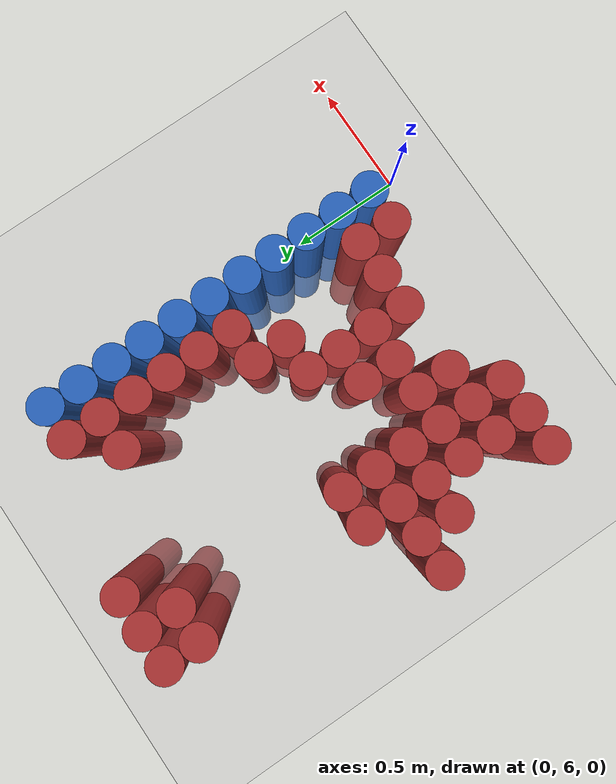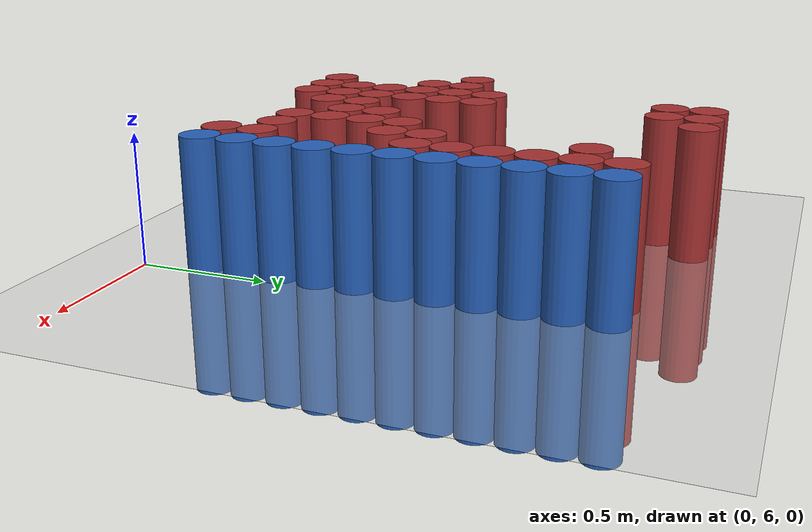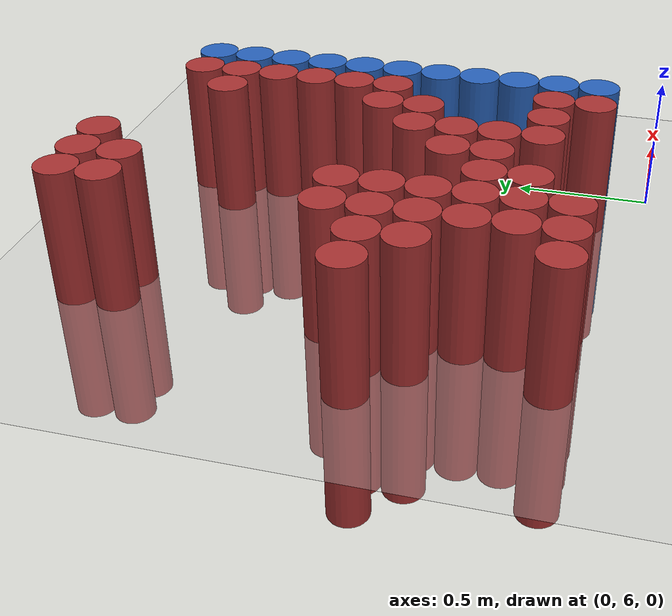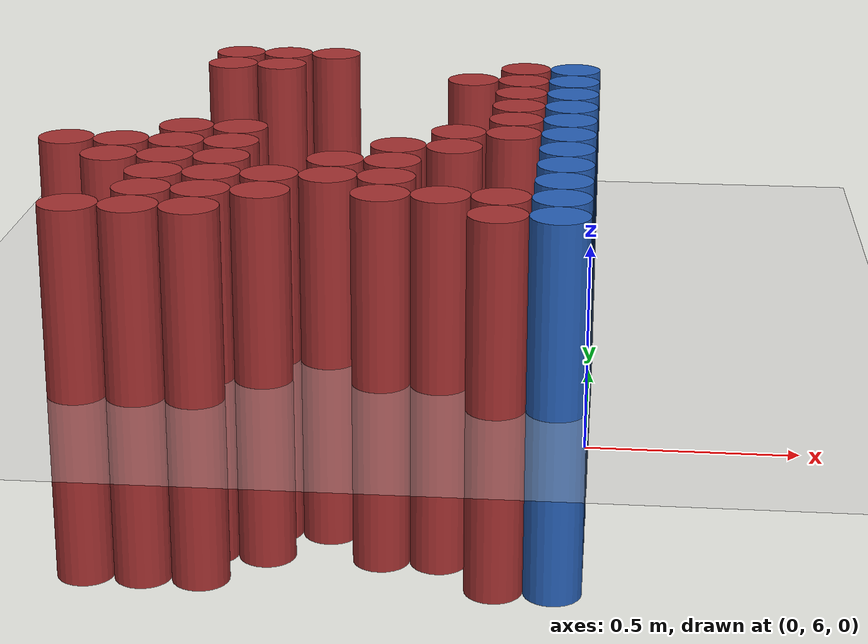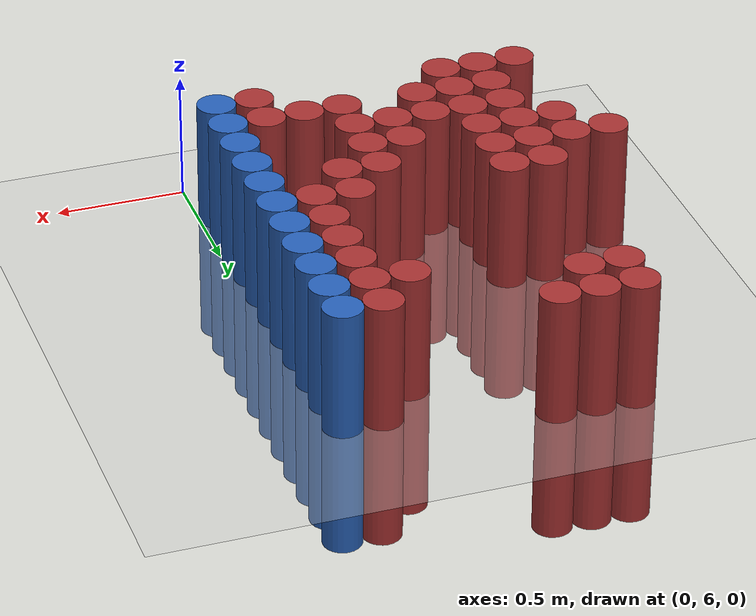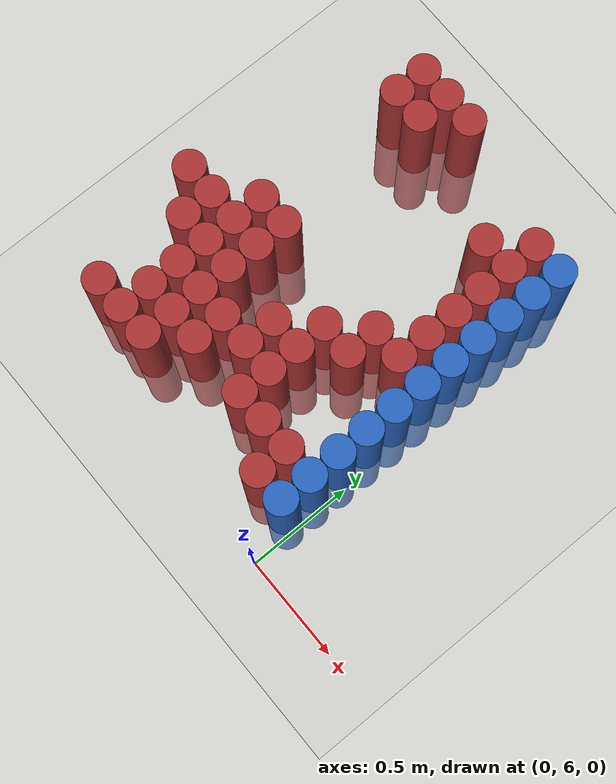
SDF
<sdf version="1.6">
 <world name="default">
  <model name="ground_plane">
   <static>1</static>
   <link name="link">
    <collision name="collision">
     <geometry><plane><normal>0 0 1</normal><size>100 100</size></plane></geometry>
     <surface><friction><ode><mu>100</mu><mu2>50</mu2></ode></friction></surface>
    </collision>
    <visual name="visual">
     <cast_shadows>0</cast_shadows>
     <geometry><plane><normal>0 0 1</normal><size>100 100</size></plane></geometry>
     <material>
      <script><uri>file://media/materials/scripts/gazebo.material</uri><name>Gazebo/Grey</name></script>
     </material>
    </visual>
   </link>
  </model>
  <model name="unit_cylinder_228">
   <static>1</static>
   <pose>-1.425000 6.825000 0.000000 0.000000 0.000000 0.000000</pose>
   <link name="link">
    <inertial>
     <mass>1</mass>
     <inertia><ixx>0.145833</ixx><ixy>0</ixy><ixz>0</ixz><iyy>0.145833</iyy><iyz>0</iyz><izz>0.125</izz></inertia>
    </inertial>
    <collision name="collision">
     <geometry><cylinder><radius>0.075000</radius><length>1</length></cylinder></geometry>
    </collision>
    <visual name="visual">
     <geometry><cylinder><radius>0.075000</radius><length>1</length></cylinder></geometry>
     <material>
      <ambient>0.648000 0.192000 0.192000 1</ambient>
      <diffuse>0.648000 0.192000 0.192000 1</diffuse>
     </material>
     <material>
      <script><name>Gazebo/Grey</name><uri>file://media/materials/scripts/gazebo.material</uri></script>
     </material>
    </visual>
   </link>
  </model>
  <model name="unit_cylinder_241">
   <static>1</static>
   <pose>-1.275000 6.225000 0.000000 0.000000 0.000000 0.000000</pose>
   <link name="link">
    <inertial>
     <mass>1</mass>
     <inertia><ixx>0.145833</ixx><ixy>0</ixy><ixz>0</ixz><iyy>0.145833</iyy><iyz>0</iyz><izz>0.125</izz></inertia>
    </inertial>
    <collision name="collision">
     <geometry><cylinder><radius>0.075000</radius><length>1</length></cylinder></geometry>
    </collision>
    <visual name="visual">
     <geometry><cylinder><radius>0.075000</radius><length>1</length></cylinder></geometry>
     <material>
      <ambient>0.648000 0.192000 0.192000 1</ambient>
      <diffuse>0.648000 0.192000 0.192000 1</diffuse>
     </material>
     <material>
      <script><name>Gazebo/Grey</name><uri>file://media/materials/scripts/gazebo.material</uri></script>
     </material>
    </visual>
   </link>
  </model>
  <model name="unit_cylinder_242">
   <static>1</static>
   <pose>-1.275000 6.675000 0.000000 0.000000 0.000000 0.000000</pose>
   <link name="link">
    <inertial>
     <mass>1</mass>
     <inertia><ixx>0.145833</ixx><ixy>0</ixy><ixz>0</ixz><iyy>0.145833</iyy><iyz>0</iyz><izz>0.125</izz></inertia>
    </inertial>
    <collision name="collision">
     <geometry><cylinder><radius>0.075000</radius><length>1</length></cylinder></geometry>
    </collision>
    <visual name="visual">
     <geometry><cylinder><radius>0.075000</radius><length>1</length></cylinder></geometry>
     <material>
      <ambient>0.648000 0.192000 0.192000 1</ambient>
      <diffuse>0.648000 0.192000 0.192000 1</diffuse>
     </material>
     <material>
      <script><name>Gazebo/Grey</name><uri>file://media/materials/scripts/gazebo.material</uri></script>
     </material>
    </visual>
   </link>
  </model>
  <model name="unit_cylinder_243">
   <static>1</static>
   <pose>-1.275000 6.825000 0.000000 0.000000 0.000000 0.000000</pose>
   <link name="link">
    <inertial>
     <mass>1</mass>
     <inertia><ixx>0.145833</ixx><ixy>0</ixy><ixz>0</ixz><iyy>0.145833</iyy><iyz>0</iyz><izz>0.125</izz></inertia>
    </inertial>
    <collision name="collision">
     <geometry><cylinder><radius>0.075000</radius><length>1</length></cylinder></geometry>
    </collision>
    <visual name="visual">
     <geometry><cylinder><radius>0.075000</radius><length>1</length></cylinder></geometry>
     <material>
      <ambient>0.648000 0.192000 0.192000 1</ambient>
      <diffuse>0.648000 0.192000 0.192000 1</diffuse>
     </material>
     <material>
      <script><name>Gazebo/Grey</name><uri>file://media/materials/scripts/gazebo.material</uri></script>
     </material>
    </visual>
   </link>
  </model>
  <model name="unit_cylinder_254">
   <static>1</static>
   <pose>-1.125000 6.225000 0.000000 0.000000 0.000000 0.000000</pose>
   <link name="link">
    <inertial>
     <mass>1</mass>
     <inertia><ixx>0.145833</ixx><ixy>0</ixy><ixz>0</ixz><iyy>0.145833</iyy><iyz>0</iyz><izz>0.125</izz></inertia>
    </inertial>
    <collision name="collision">
     <geometry><cylinder><radius>0.075000</radius><length>1</length></cylinder></geometry>
    </collision>
    <visual name="visual">
     <geometry><cylinder><radius>0.075000</radius><length>1</length></cylinder></geometry>
     <material>
      <ambient>0.648000 0.192000 0.192000 1</ambient>
      <diffuse>0.648000 0.192000 0.192000 1</diffuse>
     </material>
     <material>
      <script><name>Gazebo/Grey</name><uri>file://media/materials/scripts/gazebo.material</uri></script>
     </material>
    </visual>
   </link>
  </model>
  <model name="unit_cylinder_255">
   <static>1</static>
   <pose>-1.125000 6.375000 0.000000 0.000000 0.000000 0.000000</pose>
   <link name="link">
    <inertial>
     <mass>1</mass>
     <inertia><ixx>0.145833</ixx><ixy>0</ixy><ixz>0</ixz><iyy>0.145833</iyy><iyz>0</iyz><izz>0.125</izz></inertia>
    </inertial>
    <collision name="collision">
     <geometry><cylinder><radius>0.075000</radius><length>1</length></cylinder></geometry>
    </collision>
    <visual name="visual">
     <geometry><cylinder><radius>0.075000</radius><length>1</length></cylinder></geometry>
     <material>
      <ambient>0.648000 0.192000 0.192000 1</ambient>
      <diffuse>0.648000 0.192000 0.192000 1</diffuse>
     </material>
     <material>
      <script><name>Gazebo/Grey</name><uri>file://media/materials/scripts/gazebo.material</uri></script>
     </material>
    </visual>
   </link>
  </model>
  <model name="unit_cylinder_256">
   <static>1</static>
   <pose>-1.125000 6.525000 0.000000 0.000000 0.000000 0.000000</pose>
   <link name="link">
    <inertial>
     <mass>1</mass>
     <inertia><ixx>0.145833</ixx><ixy>0</ixy><ixz>0</ixz><iyy>0.145833</iyy><iyz>0</iyz><izz>0.125</izz></inertia>
    </inertial>
    <collision name="collision">
     <geometry><cylinder><radius>0.075000</radius><length>1</length></cylinder></geometry>
    </collision>
    <visual name="visual">
     <geometry><cylinder><radius>0.075000</radius><length>1</length></cylinder></geometry>
     <material>
      <ambient>0.648000 0.192000 0.192000 1</ambient>
      <diffuse>0.648000 0.192000 0.192000 1</diffuse>
     </material>
     <material>
      <script><name>Gazebo/Grey</name><uri>file://media/materials/scripts/gazebo.material</uri></script>
     </material>
    </visual>
   </link>
  </model>
  <model name="unit_cylinder_257">
   <static>1</static>
   <pose>-1.125000 6.675000 0.000000 0.000000 0.000000 0.000000</pose>
   <link name="link">
    <inertial>
     <mass>1</mass>
     <inertia><ixx>0.145833</ixx><ixy>0</ixy><ixz>0</ixz><iyy>0.145833</iyy><iyz>0</iyz><izz>0.125</izz></inertia>
    </inertial>
    <collision name="collision">
     <geometry><cylinder><radius>0.075000</radius><length>1</length></cylinder></geometry>
    </collision>
    <visual name="visual">
     <geometry><cylinder><radius>0.075000</radius><length>1</length></cylinder></geometry>
     <material>
      <ambient>0.648000 0.192000 0.192000 1</ambient>
      <diffuse>0.648000 0.192000 0.192000 1</diffuse>
     </material>
     <material>
      <script><name>Gazebo/Grey</name><uri>file://media/materials/scripts/gazebo.material</uri></script>
     </material>
    </visual>
   </link>
  </model>
  <model name="unit_cylinder_258">
   <static>1</static>
   <pose>-1.125000 6.825000 0.000000 0.000000 0.000000 0.000000</pose>
   <link name="link">
    <inertial>
     <mass>1</mass>
     <inertia><ixx>0.145833</ixx><ixy>0</ixy><ixz>0</ixz><iyy>0.145833</iyy><iyz>0</iyz><izz>0.125</izz></inertia>
    </inertial>
    <collision name="collision">
     <geometry><cylinder><radius>0.075000</radius><length>1</length></cylinder></geometry>
    </collision>
    <visual name="visual">
     <geometry><cylinder><radius>0.075000</radius><length>1</length></cylinder></geometry>
     <material>
      <ambient>0.648000 0.192000 0.192000 1</ambient>
      <diffuse>0.648000 0.192000 0.192000 1</diffuse>
     </material>
     <material>
      <script><name>Gazebo/Grey</name><uri>file://media/materials/scripts/gazebo.material</uri></script>
     </material>
    </visual>
   </link>
  </model>
  <model name="unit_cylinder_259">
   <static>1</static>
   <pose>-1.125000 6.975000 0.000000 0.000000 0.000000 0.000000</pose>
   <link name="link">
    <inertial>
     <mass>1</mass>
     <inertia><ixx>0.145833</ixx><ixy>0</ixy><ixz>0</ixz><iyy>0.145833</iyy><iyz>0</iyz><izz>0.125</izz></inertia>
    </inertial>
    <collision name="collision">
     <geometry><cylinder><radius>0.075000</radius><length>1</length></cylinder></geometry>
    </collision>
    <visual name="visual">
     <geometry><cylinder><radius>0.075000</radius><length>1</length></cylinder></geometry>
     <material>
      <ambient>0.648000 0.192000 0.192000 1</ambient>
      <diffuse>0.648000 0.192000 0.192000 1</diffuse>
     </material>
     <material>
      <script><name>Gazebo/Grey</name><uri>file://media/materials/scripts/gazebo.material</uri></script>
     </material>
    </visual>
   </link>
  </model>
  <model name="unit_cylinder_260">
   <static>1</static>
   <pose>-1.125000 7.725000 0.000000 0.000000 0.000000 0.000000</pose>
   <link name="link">
    <inertial>
     <mass>1</mass>
     <inertia><ixx>0.145833</ixx><ixy>0</ixy><ixz>0</ixz><iyy>0.145833</iyy><iyz>0</iyz><izz>0.125</izz></inertia>
    </inertial>
    <collision name="collision">
     <geometry><cylinder><radius>0.075000</radius><length>1</length></cylinder></geometry>
    </collision>
    <visual name="visual">
     <geometry><cylinder><radius>0.075000</radius><length>1</length></cylinder></geometry>
     <material>
      <ambient>0.648000 0.192000 0.192000 1</ambient>
      <diffuse>0.648000 0.192000 0.192000 1</diffuse>
     </material>
     <material>
      <script><name>Gazebo/Grey</name><uri>file://media/materials/scripts/gazebo.material</uri></script>
     </material>
    </visual>
   </link>
  </model>
  <model name="unit_cylinder_261">
   <static>1</static>
   <pose>-1.125000 7.875000 0.000000 0.000000 0.000000 0.000000</pose>
   <link name="link">
    <inertial>
     <mass>1</mass>
     <inertia><ixx>0.145833</ixx><ixy>0</ixy><ixz>0</ixz><iyy>0.145833</iyy><iyz>0</iyz><izz>0.125</izz></inertia>
    </inertial>
    <collision name="collision">
     <geometry><cylinder><radius>0.075000</radius><length>1</length></cylinder></geometry>
    </collision>
    <visual name="visual">
     <geometry><cylinder><radius>0.075000</radius><length>1</length></cylinder></geometry>
     <material>
      <ambient>0.648000 0.192000 0.192000 1</ambient>
      <diffuse>0.648000 0.192000 0.192000 1</diffuse>
     </material>
     <material>
      <script><name>Gazebo/Grey</name><uri>file://media/materials/scripts/gazebo.material</uri></script>
     </material>
    </visual>
   </link>
  </model>
  <model name="unit_cylinder_269">
   <static>1</static>
   <pose>-0.975000 6.225000 0.000000 0.000000 0.000000 0.000000</pose>
   <link name="link">
    <inertial>
     <mass>1</mass>
     <inertia><ixx>0.145833</ixx><ixy>0</ixy><ixz>0</ixz><iyy>0.145833</iyy><iyz>0</iyz><izz>0.125</izz></inertia>
    </inertial>
    <collision name="collision">
     <geometry><cylinder><radius>0.075000</radius><length>1</length></cylinder></geometry>
    </collision>
    <visual name="visual">
     <geometry><cylinder><radius>0.075000</radius><length>1</length></cylinder></geometry>
     <material>
      <ambient>0.648000 0.192000 0.192000 1</ambient>
      <diffuse>0.648000 0.192000 0.192000 1</diffuse>
     </material>
     <material>
      <script><name>Gazebo/Grey</name><uri>file://media/materials/scripts/gazebo.material</uri></script>
     </material>
    </visual>
   </link>
  </model>
  <model name="unit_cylinder_270">
   <static>1</static>
   <pose>-0.975000 6.375000 0.000000 0.000000 0.000000 0.000000</pose>
   <link name="link">
    <inertial>
     <mass>1</mass>
     <inertia><ixx>0.145833</ixx><ixy>0</ixy><ixz>0</ixz><iyy>0.145833</iyy><iyz>0</iyz><izz>0.125</izz></inertia>
    </inertial>
    <collision name="collision">
     <geometry><cylinder><radius>0.075000</radius><length>1</length></cylinder></geometry>
    </collision>
    <visual name="visual">
     <geometry><cylinder><radius>0.075000</radius><length>1</length></cylinder></geometry>
     <material>
      <ambient>0.648000 0.192000 0.192000 1</ambient>
      <diffuse>0.648000 0.192000 0.192000 1</diffuse>
     </material>
     <material>
      <script><name>Gazebo/Grey</name><uri>file://media/materials/scripts/gazebo.material</uri></script>
     </material>
    </visual>
   </link>
  </model>
  <model name="unit_cylinder_271">
   <static>1</static>
   <pose>-0.975000 6.525000 0.000000 0.000000 0.000000 0.000000</pose>
   <link name="link">
    <inertial>
     <mass>1</mass>
     <inertia><ixx>0.145833</ixx><ixy>0</ixy><ixz>0</ixz><iyy>0.145833</iyy><iyz>0</iyz><izz>0.125</izz></inertia>
    </inertial>
    <collision name="collision">
     <geometry><cylinder><radius>0.075000</radius><length>1</length></cylinder></geometry>
    </collision>
    <visual name="visual">
     <geometry><cylinder><radius>0.075000</radius><length>1</length></cylinder></geometry>
     <material>
      <ambient>0.648000 0.192000 0.192000 1</ambient>
      <diffuse>0.648000 0.192000 0.192000 1</diffuse>
     </material>
     <material>
      <script><name>Gazebo/Grey</name><uri>file://media/materials/scripts/gazebo.material</uri></script>
     </material>
    </visual>
   </link>
  </model>
  <model name="unit_cylinder_272">
   <static>1</static>
   <pose>-0.975000 6.675000 0.000000 0.000000 0.000000 0.000000</pose>
   <link name="link">
    <inertial>
     <mass>1</mass>
     <inertia><ixx>0.145833</ixx><ixy>0</ixy><ixz>0</ixz><iyy>0.145833</iyy><iyz>0</iyz><izz>0.125</izz></inertia>
    </inertial>
    <collision name="collision">
     <geometry><cylinder><radius>0.075000</radius><length>1</length></cylinder></geometry>
    </collision>
    <visual name="visual">
     <geometry><cylinder><radius>0.075000</radius><length>1</length></cylinder></geometry>
     <material>
      <ambient>0.648000 0.192000 0.192000 1</ambient>
      <diffuse>0.648000 0.192000 0.192000 1</diffuse>
     </material>
     <material>
      <script><name>Gazebo/Grey</name><uri>file://media/materials/scripts/gazebo.material</uri></script>
     </material>
    </visual>
   </link>
  </model>
  <model name="unit_cylinder_273">
   <static>1</static>
   <pose>-0.975000 6.825000 0.000000 0.000000 0.000000 0.000000</pose>
   <link name="link">
    <inertial>
     <mass>1</mass>
     <inertia><ixx>0.145833</ixx><ixy>0</ixy><ixz>0</ixz><iyy>0.145833</iyy><iyz>0</iyz><izz>0.125</izz></inertia>
    </inertial>
    <collision name="collision">
     <geometry><cylinder><radius>0.075000</radius><length>1</length></cylinder></geometry>
    </collision>
    <visual name="visual">
     <geometry><cylinder><radius>0.075000</radius><length>1</length></cylinder></geometry>
     <material>
      <ambient>0.648000 0.192000 0.192000 1</ambient>
      <diffuse>0.648000 0.192000 0.192000 1</diffuse>
     </material>
     <material>
      <script><name>Gazebo/Grey</name><uri>file://media/materials/scripts/gazebo.material</uri></script>
     </material>
    </visual>
   </link>
  </model>
  <model name="unit_cylinder_274">
   <static>1</static>
   <pose>-0.975000 6.975000 0.000000 0.000000 0.000000 0.000000</pose>
   <link name="link">
    <inertial>
     <mass>1</mass>
     <inertia><ixx>0.145833</ixx><ixy>0</ixy><ixz>0</ixz><iyy>0.145833</iyy><iyz>0</iyz><izz>0.125</izz></inertia>
    </inertial>
    <collision name="collision">
     <geometry><cylinder><radius>0.075000</radius><length>1</length></cylinder></geometry>
    </collision>
    <visual name="visual">
     <geometry><cylinder><radius>0.075000</radius><length>1</length></cylinder></geometry>
     <material>
      <ambient>0.648000 0.192000 0.192000 1</ambient>
      <diffuse>0.648000 0.192000 0.192000 1</diffuse>
     </material>
     <material>
      <script><name>Gazebo/Grey</name><uri>file://media/materials/scripts/gazebo.material</uri></script>
     </material>
    </visual>
   </link>
  </model>
  <model name="unit_cylinder_275">
   <static>1</static>
   <pose>-0.975000 7.725000 0.000000 0.000000 0.000000 0.000000</pose>
   <link name="link">
    <inertial>
     <mass>1</mass>
     <inertia><ixx>0.145833</ixx><ixy>0</ixy><ixz>0</ixz><iyy>0.145833</iyy><iyz>0</iyz><izz>0.125</izz></inertia>
    </inertial>
    <collision name="collision">
     <geometry><cylinder><radius>0.075000</radius><length>1</length></cylinder></geometry>
    </collision>
    <visual name="visual">
     <geometry><cylinder><radius>0.075000</radius><length>1</length></cylinder></geometry>
     <material>
      <ambient>0.648000 0.192000 0.192000 1</ambient>
      <diffuse>0.648000 0.192000 0.192000 1</diffuse>
     </material>
     <material>
      <script><name>Gazebo/Grey</name><uri>file://media/materials/scripts/gazebo.material</uri></script>
     </material>
    </visual>
   </link>
  </model>
  <model name="unit_cylinder_276">
   <static>1</static>
   <pose>-0.975000 7.875000 0.000000 0.000000 0.000000 0.000000</pose>
   <link name="link">
    <inertial>
     <mass>1</mass>
     <inertia><ixx>0.145833</ixx><ixy>0</ixy><ixz>0</ixz><iyy>0.145833</iyy><iyz>0</iyz><izz>0.125</izz></inertia>
    </inertial>
    <collision name="collision">
     <geometry><cylinder><radius>0.075000</radius><length>1</length></cylinder></geometry>
    </collision>
    <visual name="visual">
     <geometry><cylinder><radius>0.075000</radius><length>1</length></cylinder></geometry>
     <material>
      <ambient>0.648000 0.192000 0.192000 1</ambient>
      <diffuse>0.648000 0.192000 0.192000 1</diffuse>
     </material>
     <material>
      <script><name>Gazebo/Grey</name><uri>file://media/materials/scripts/gazebo.material</uri></script>
     </material>
    </visual>
   </link>
  </model>
  <model name="unit_cylinder_281">
   <static>1</static>
   <pose>-0.825000 6.375000 0.000000 0.000000 0.000000 0.000000</pose>
   <link name="link">
    <inertial>
     <mass>1</mass>
     <inertia><ixx>0.145833</ixx><ixy>0</ixy><ixz>0</ixz><iyy>0.145833</iyy><iyz>0</iyz><izz>0.125</izz></inertia>
    </inertial>
    <collision name="collision">
     <geometry><cylinder><radius>0.075000</radius><length>1</length></cylinder></geometry>
    </collision>
    <visual name="visual">
     <geometry><cylinder><radius>0.075000</radius><length>1</length></cylinder></geometry>
     <material>
      <ambient>0.648000 0.192000 0.192000 1</ambient>
      <diffuse>0.648000 0.192000 0.192000 1</diffuse>
     </material>
     <material>
      <script><name>Gazebo/Grey</name><uri>file://media/materials/scripts/gazebo.material</uri></script>
     </material>
    </visual>
   </link>
  </model>
  <model name="unit_cylinder_282">
   <static>1</static>
   <pose>-0.825000 6.525000 0.000000 0.000000 0.000000 0.000000</pose>
   <link name="link">
    <inertial>
     <mass>1</mass>
     <inertia><ixx>0.145833</ixx><ixy>0</ixy><ixz>0</ixz><iyy>0.145833</iyy><iyz>0</iyz><izz>0.125</izz></inertia>
    </inertial>
    <collision name="collision">
     <geometry><cylinder><radius>0.075000</radius><length>1</length></cylinder></geometry>
    </collision>
    <visual name="visual">
     <geometry><cylinder><radius>0.075000</radius><length>1</length></cylinder></geometry>
     <material>
      <ambient>0.648000 0.192000 0.192000 1</ambient>
      <diffuse>0.648000 0.192000 0.192000 1</diffuse>
     </material>
     <material>
      <script><name>Gazebo/Grey</name><uri>file://media/materials/scripts/gazebo.material</uri></script>
     </material>
    </visual>
   </link>
  </model>
  <model name="unit_cylinder_283">
   <static>1</static>
   <pose>-0.825000 7.875000 0.000000 0.000000 0.000000 0.000000</pose>
   <link name="link">
    <inertial>
     <mass>1</mass>
     <inertia><ixx>0.145833</ixx><ixy>0</ixy><ixz>0</ixz><iyy>0.145833</iyy><iyz>0</iyz><izz>0.125</izz></inertia>
    </inertial>
    <collision name="collision">
     <geometry><cylinder><radius>0.075000</radius><length>1</length></cylinder></geometry>
    </collision>
    <visual name="visual">
     <geometry><cylinder><radius>0.075000</radius><length>1</length></cylinder></geometry>
     <material>
      <ambient>0.648000 0.192000 0.192000 1</ambient>
      <diffuse>0.648000 0.192000 0.192000 1</diffuse>
     </material>
     <material>
      <script><name>Gazebo/Grey</name><uri>file://media/materials/scripts/gazebo.material</uri></script>
     </material>
    </visual>
   </link>
  </model>
  <model name="unit_cylinder_287">
   <static>1</static>
   <pose>-0.675000 6.525000 0.000000 0.000000 0.000000 0.000000</pose>
   <link name="link">
    <inertial>
     <mass>1</mass>
     <inertia><ixx>0.145833</ixx><ixy>0</ixy><ixz>0</ixz><iyy>0.145833</iyy><iyz>0</iyz><izz>0.125</izz></inertia>
    </inertial>
    <collision name="collision">
     <geometry><cylinder><radius>0.075000</radius><length>1</length></cylinder></geometry>
    </collision>
    <visual name="visual">
     <geometry><cylinder><radius>0.075000</radius><length>1</length></cylinder></geometry>
     <material>
      <ambient>0.648000 0.192000 0.192000 1</ambient>
      <diffuse>0.648000 0.192000 0.192000 1</diffuse>
     </material>
     <material>
      <script><name>Gazebo/Grey</name><uri>file://media/materials/scripts/gazebo.material</uri></script>
     </material>
    </visual>
   </link>
  </model>
  <model name="unit_cylinder_288">
   <static>1</static>
   <pose>-0.675000 6.675000 0.000000 0.000000 0.000000 0.000000</pose>
   <link name="link">
    <inertial>
     <mass>1</mass>
     <inertia><ixx>0.145833</ixx><ixy>0</ixy><ixz>0</ixz><iyy>0.145833</iyy><iyz>0</iyz><izz>0.125</izz></inertia>
    </inertial>
    <collision name="collision">
     <geometry><cylinder><radius>0.075000</radius><length>1</length></cylinder></geometry>
    </collision>
    <visual name="visual">
     <geometry><cylinder><radius>0.075000</radius><length>1</length></cylinder></geometry>
     <material>
      <ambient>0.648000 0.192000 0.192000 1</ambient>
      <diffuse>0.648000 0.192000 0.192000 1</diffuse>
     </material>
     <material>
      <script><name>Gazebo/Grey</name><uri>file://media/materials/scripts/gazebo.material</uri></script>
     </material>
    </visual>
   </link>
  </model>
  <model name="unit_cylinder_295">
   <static>1</static>
   <pose>-0.525000 6.375000 0.000000 0.000000 0.000000 0.000000</pose>
   <link name="link">
    <inertial>
     <mass>1</mass>
     <inertia><ixx>0.145833</ixx><ixy>0</ixy><ixz>0</ixz><iyy>0.145833</iyy><iyz>0</iyz><izz>0.125</izz></inertia>
    </inertial>
    <collision name="collision">
     <geometry><cylinder><radius>0.075000</radius><length>1</length></cylinder></geometry>
    </collision>
    <visual name="visual">
     <geometry><cylinder><radius>0.075000</radius><length>1</length></cylinder></geometry>
     <material>
      <ambient>0.648000 0.192000 0.192000 1</ambient>
      <diffuse>0.648000 0.192000 0.192000 1</diffuse>
     </material>
     <material>
      <script><name>Gazebo/Grey</name><uri>file://media/materials/scripts/gazebo.material</uri></script>
     </material>
    </visual>
   </link>
  </model>
  <model name="unit_cylinder_296">
   <static>1</static>
   <pose>-0.525000 6.525000 0.000000 0.000000 0.000000 0.000000</pose>
   <link name="link">
    <inertial>
     <mass>1</mass>
     <inertia><ixx>0.145833</ixx><ixy>0</ixy><ixz>0</ixz><iyy>0.145833</iyy><iyz>0</iyz><izz>0.125</izz></inertia>
    </inertial>
    <collision name="collision">
     <geometry><cylinder><radius>0.075000</radius><length>1</length></cylinder></geometry>
    </collision>
    <visual name="visual">
     <geometry><cylinder><radius>0.075000</radius><length>1</length></cylinder></geometry>
     <material>
      <ambient>0.648000 0.192000 0.192000 1</ambient>
      <diffuse>0.648000 0.192000 0.192000 1</diffuse>
     </material>
     <material>
      <script><name>Gazebo/Grey</name><uri>file://media/materials/scripts/gazebo.material</uri></script>
     </material>
    </visual>
   </link>
  </model>
  <model name="unit_cylinder_297">
   <static>1</static>
   <pose>-0.525000 6.675000 0.000000 0.000000 0.000000 0.000000</pose>
   <link name="link">
    <inertial>
     <mass>1</mass>
     <inertia><ixx>0.145833</ixx><ixy>0</ixy><ixz>0</ixz><iyy>0.145833</iyy><iyz>0</iyz><izz>0.125</izz></inertia>
    </inertial>
    <collision name="collision">
     <geometry><cylinder><radius>0.075000</radius><length>1</length></cylinder></geometry>
    </collision>
    <visual name="visual">
     <geometry><cylinder><radius>0.075000</radius><length>1</length></cylinder></geometry>
     <material>
      <ambient>0.648000 0.192000 0.192000 1</ambient>
      <diffuse>0.648000 0.192000 0.192000 1</diffuse>
     </material>
     <material>
      <script><name>Gazebo/Grey</name><uri>file://media/materials/scripts/gazebo.material</uri></script>
     </material>
    </visual>
   </link>
  </model>
  <model name="unit_cylinder_298">
   <static>1</static>
   <pose>-0.525000 6.825000 0.000000 0.000000 0.000000 0.000000</pose>
   <link name="link">
    <inertial>
     <mass>1</mass>
     <inertia><ixx>0.145833</ixx><ixy>0</ixy><ixz>0</ixz><iyy>0.145833</iyy><iyz>0</iyz><izz>0.125</izz></inertia>
    </inertial>
    <collision name="collision">
     <geometry><cylinder><radius>0.075000</radius><length>1</length></cylinder></geometry>
    </collision>
    <visual name="visual">
     <geometry><cylinder><radius>0.075000</radius><length>1</length></cylinder></geometry>
     <material>
      <ambient>0.648000 0.192000 0.192000 1</ambient>
      <diffuse>0.648000 0.192000 0.192000 1</diffuse>
     </material>
     <material>
      <script><name>Gazebo/Grey</name><uri>file://media/materials/scripts/gazebo.material</uri></script>
     </material>
    </visual>
   </link>
  </model>
  <model name="unit_cylinder_305">
   <static>1</static>
   <pose>-0.375000 6.375000 0.000000 0.000000 0.000000 0.000000</pose>
   <link name="link">
    <inertial>
     <mass>1</mass>
     <inertia><ixx>0.145833</ixx><ixy>0</ixy><ixz>0</ixz><iyy>0.145833</iyy><iyz>0</iyz><izz>0.125</izz></inertia>
    </inertial>
    <collision name="collision">
     <geometry><cylinder><radius>0.075000</radius><length>1</length></cylinder></geometry>
    </collision>
    <visual name="visual">
     <geometry><cylinder><radius>0.075000</radius><length>1</length></cylinder></geometry>
     <material>
      <ambient>0.648000 0.192000 0.192000 1</ambient>
      <diffuse>0.648000 0.192000 0.192000 1</diffuse>
     </material>
     <material>
      <script><name>Gazebo/Grey</name><uri>file://media/materials/scripts/gazebo.material</uri></script>
     </material>
    </visual>
   </link>
  </model>
  <model name="unit_cylinder_306">
   <static>1</static>
   <pose>-0.375000 6.825000 0.000000 0.000000 0.000000 0.000000</pose>
   <link name="link">
    <inertial>
     <mass>1</mass>
     <inertia><ixx>0.145833</ixx><ixy>0</ixy><ixz>0</ixz><iyy>0.145833</iyy><iyz>0</iyz><izz>0.125</izz></inertia>
    </inertial>
    <collision name="collision">
     <geometry><cylinder><radius>0.075000</radius><length>1</length></cylinder></geometry>
    </collision>
    <visual name="visual">
     <geometry><cylinder><radius>0.075000</radius><length>1</length></cylinder></geometry>
     <material>
      <ambient>0.648000 0.192000 0.192000 1</ambient>
      <diffuse>0.648000 0.192000 0.192000 1</diffuse>
     </material>
     <material>
      <script><name>Gazebo/Grey</name><uri>file://media/materials/scripts/gazebo.material</uri></script>
     </material>
    </visual>
   </link>
  </model>
  <model name="unit_cylinder_307">
   <static>1</static>
   <pose>-0.375000 6.975000 0.000000 0.000000 0.000000 0.000000</pose>
   <link name="link">
    <inertial>
     <mass>1</mass>
     <inertia><ixx>0.145833</ixx><ixy>0</ixy><ixz>0</ixz><iyy>0.145833</iyy><iyz>0</iyz><izz>0.125</izz></inertia>
    </inertial>
    <collision name="collision">
     <geometry><cylinder><radius>0.075000</radius><length>1</length></cylinder></geometry>
    </collision>
    <visual name="visual">
     <geometry><cylinder><radius>0.075000</radius><length>1</length></cylinder></geometry>
     <material>
      <ambient>0.648000 0.192000 0.192000 1</ambient>
      <diffuse>0.648000 0.192000 0.192000 1</diffuse>
     </material>
     <material>
      <script><name>Gazebo/Grey</name><uri>file://media/materials/scripts/gazebo.material</uri></script>
     </material>
    </visual>
   </link>
  </model>
  <model name="unit_cylinder_308">
   <static>1</static>
   <pose>-0.375000 7.575000 0.000000 0.000000 0.000000 0.000000</pose>
   <link name="link">
    <inertial>
     <mass>1</mass>
     <inertia><ixx>0.145833</ixx><ixy>0</ixy><ixz>0</ixz><iyy>0.145833</iyy><iyz>0</iyz><izz>0.125</izz></inertia>
    </inertial>
    <collision name="collision">
     <geometry><cylinder><radius>0.075000</radius><length>1</length></cylinder></geometry>
    </collision>
    <visual name="visual">
     <geometry><cylinder><radius>0.075000</radius><length>1</length></cylinder></geometry>
     <material>
      <ambient>0.648000 0.192000 0.192000 1</ambient>
      <diffuse>0.648000 0.192000 0.192000 1</diffuse>
     </material>
     <material>
      <script><name>Gazebo/Grey</name><uri>file://media/materials/scripts/gazebo.material</uri></script>
     </material>
    </visual>
   </link>
  </model>
  <model name="unit_cylinder_321">
   <static>1</static>
   <pose>-0.225000 6.225000 0.000000 0.000000 0.000000 0.000000</pose>
   <link name="link">
    <inertial>
     <mass>1</mass>
     <inertia><ixx>0.145833</ixx><ixy>0</ixy><ixz>0</ixz><iyy>0.145833</iyy><iyz>0</iyz><izz>0.125</izz></inertia>
    </inertial>
    <collision name="collision">
     <geometry><cylinder><radius>0.075000</radius><length>1</length></cylinder></geometry>
    </collision>
    <visual name="visual">
     <geometry><cylinder><radius>0.075000</radius><length>1</length></cylinder></geometry>
     <material>
      <ambient>0.648000 0.192000 0.192000 1</ambient>
      <diffuse>0.648000 0.192000 0.192000 1</diffuse>
     </material>
     <material>
      <script><name>Gazebo/Grey</name><uri>file://media/materials/scripts/gazebo.material</uri></script>
     </material>
    </visual>
   </link>
  </model>
  <model name="unit_cylinder_322">
   <static>1</static>
   <pose>-0.225000 6.375000 0.000000 0.000000 0.000000 0.000000</pose>
   <link name="link">
    <inertial>
     <mass>1</mass>
     <inertia><ixx>0.145833</ixx><ixy>0</ixy><ixz>0</ixz><iyy>0.145833</iyy><iyz>0</iyz><izz>0.125</izz></inertia>
    </inertial>
    <collision name="collision">
     <geometry><cylinder><radius>0.075000</radius><length>1</length></cylinder></geometry>
    </collision>
    <visual name="visual">
     <geometry><cylinder><radius>0.075000</radius><length>1</length></cylinder></geometry>
     <material>
      <ambient>0.648000 0.192000 0.192000 1</ambient>
      <diffuse>0.648000 0.192000 0.192000 1</diffuse>
     </material>
     <material>
      <script><name>Gazebo/Grey</name><uri>file://media/materials/scripts/gazebo.material</uri></script>
     </material>
    </visual>
   </link>
  </model>
  <model name="unit_cylinder_323">
   <static>1</static>
   <pose>-0.225000 6.975000 0.000000 0.000000 0.000000 0.000000</pose>
   <link name="link">
    <inertial>
     <mass>1</mass>
     <inertia><ixx>0.145833</ixx><ixy>0</ixy><ixz>0</ixz><iyy>0.145833</iyy><iyz>0</iyz><izz>0.125</izz></inertia>
    </inertial>
    <collision name="collision">
     <geometry><cylinder><radius>0.075000</radius><length>1</length></cylinder></geometry>
    </collision>
    <visual name="visual">
     <geometry><cylinder><radius>0.075000</radius><length>1</length></cylinder></geometry>
     <material>
      <ambient>0.648000 0.192000 0.192000 1</ambient>
      <diffuse>0.648000 0.192000 0.192000 1</diffuse>
     </material>
     <material>
      <script><name>Gazebo/Grey</name><uri>file://media/materials/scripts/gazebo.material</uri></script>
     </material>
    </visual>
   </link>
  </model>
  <model name="unit_cylinder_324">
   <static>1</static>
   <pose>-0.225000 7.125000 0.000000 0.000000 0.000000 0.000000</pose>
   <link name="link">
    <inertial>
     <mass>1</mass>
     <inertia><ixx>0.145833</ixx><ixy>0</ixy><ixz>0</ixz><iyy>0.145833</iyy><iyz>0</iyz><izz>0.125</izz></inertia>
    </inertial>
    <collision name="collision">
     <geometry><cylinder><radius>0.075000</radius><length>1</length></cylinder></geometry>
    </collision>
    <visual name="visual">
     <geometry><cylinder><radius>0.075000</radius><length>1</length></cylinder></geometry>
     <material>
      <ambient>0.648000 0.192000 0.192000 1</ambient>
      <diffuse>0.648000 0.192000 0.192000 1</diffuse>
     </material>
     <material>
      <script><name>Gazebo/Grey</name><uri>file://media/materials/scripts/gazebo.material</uri></script>
     </material>
    </visual>
   </link>
  </model>
  <model name="unit_cylinder_325">
   <static>1</static>
   <pose>-0.225000 7.275000 0.000000 0.000000 0.000000 0.000000</pose>
   <link name="link">
    <inertial>
     <mass>1</mass>
     <inertia><ixx>0.145833</ixx><ixy>0</ixy><ixz>0</ixz><iyy>0.145833</iyy><iyz>0</iyz><izz>0.125</izz></inertia>
    </inertial>
    <collision name="collision">
     <geometry><cylinder><radius>0.075000</radius><length>1</length></cylinder></geometry>
    </collision>
    <visual name="visual">
     <geometry><cylinder><radius>0.075000</radius><length>1</length></cylinder></geometry>
     <material>
      <ambient>0.648000 0.192000 0.192000 1</ambient>
      <diffuse>0.648000 0.192000 0.192000 1</diffuse>
     </material>
     <material>
      <script><name>Gazebo/Grey</name><uri>file://media/materials/scripts/gazebo.material</uri></script>
     </material>
    </visual>
   </link>
  </model>
  <model name="unit_cylinder_326">
   <static>1</static>
   <pose>-0.225000 7.425000 0.000000 0.000000 0.000000 0.000000</pose>
   <link name="link">
    <inertial>
     <mass>1</mass>
     <inertia><ixx>0.145833</ixx><ixy>0</ixy><ixz>0</ixz><iyy>0.145833</iyy><iyz>0</iyz><izz>0.125</izz></inertia>
    </inertial>
    <collision name="collision">
     <geometry><cylinder><radius>0.075000</radius><length>1</length></cylinder></geometry>
    </collision>
    <visual name="visual">
     <geometry><cylinder><radius>0.075000</radius><length>1</length></cylinder></geometry>
     <material>
      <ambient>0.648000 0.192000 0.192000 1</ambient>
      <diffuse>0.648000 0.192000 0.192000 1</diffuse>
     </material>
     <material>
      <script><name>Gazebo/Grey</name><uri>file://media/materials/scripts/gazebo.material</uri></script>
     </material>
    </visual>
   </link>
  </model>
  <model name="unit_cylinder_327">
   <static>1</static>
   <pose>-0.225000 7.575000 0.000000 0.000000 0.000000 0.000000</pose>
   <link name="link">
    <inertial>
     <mass>1</mass>
     <inertia><ixx>0.145833</ixx><ixy>0</ixy><ixz>0</ixz><iyy>0.145833</iyy><iyz>0</iyz><izz>0.125</izz></inertia>
    </inertial>
    <collision name="collision">
     <geometry><cylinder><radius>0.075000</radius><length>1</length></cylinder></geometry>
    </collision>
    <visual name="visual">
     <geometry><cylinder><radius>0.075000</radius><length>1</length></cylinder></geometry>
     <material>
      <ambient>0.648000 0.192000 0.192000 1</ambient>
      <diffuse>0.648000 0.192000 0.192000 1</diffuse>
     </material>
     <material>
      <script><name>Gazebo/Grey</name><uri>file://media/materials/scripts/gazebo.material</uri></script>
     </material>
    </visual>
   </link>
  </model>
  <model name="unit_cylinder_328">
   <static>1</static>
   <pose>-0.225000 7.725000 0.000000 0.000000 0.000000 0.000000</pose>
   <link name="link">
    <inertial>
     <mass>1</mass>
     <inertia><ixx>0.145833</ixx><ixy>0</ixy><ixz>0</ixz><iyy>0.145833</iyy><iyz>0</iyz><izz>0.125</izz></inertia>
    </inertial>
    <collision name="collision">
     <geometry><cylinder><radius>0.075000</radius><length>1</length></cylinder></geometry>
    </collision>
    <visual name="visual">
     <geometry><cylinder><radius>0.075000</radius><length>1</length></cylinder></geometry>
     <material>
      <ambient>0.648000 0.192000 0.192000 1</ambient>
      <diffuse>0.648000 0.192000 0.192000 1</diffuse>
     </material>
     <material>
      <script><name>Gazebo/Grey</name><uri>file://media/materials/scripts/gazebo.material</uri></script>
     </material>
    </visual>
   </link>
  </model>
  <model name="unit_cylinder_340">
   <static>1</static>
   <pose>-0.075000 6.225000 0.000000 0.000000 0.000000 0.000000</pose>
   <link name="link">
    <inertial>
     <mass>1</mass>
     <inertia><ixx>0.145833</ixx><ixy>0</ixy><ixz>0</ixz><iyy>0.145833</iyy><iyz>0</iyz><izz>0.125</izz></inertia>
    </inertial>
    <collision name="collision">
     <geometry><cylinder><radius>0.075000</radius><length>1</length></cylinder></geometry>
    </collision>
    <visual name="visual">
     <geometry><cylinder><radius>0.075000</radius><length>1</length></cylinder></geometry>
     <material>
      <ambient>0.152000 0.379000 0.720000 1</ambient>
      <diffuse>0.152000 0.379000 0.720000 1</diffuse>
     </material>
     <material>
      <script><name>Gazebo/Grey</name><uri>file://media/materials/scripts/gazebo.material</uri></script>
     </material>
    </visual>
   </link>
  </model>
  <model name="unit_cylinder_341">
   <static>1</static>
   <pose>-0.075000 6.375000 0.000000 0.000000 0.000000 0.000000</pose>
   <link name="link">
    <inertial>
     <mass>1</mass>
     <inertia><ixx>0.145833</ixx><ixy>0</ixy><ixz>0</ixz><iyy>0.145833</iyy><iyz>0</iyz><izz>0.125</izz></inertia>
    </inertial>
    <collision name="collision">
     <geometry><cylinder><radius>0.075000</radius><length>1</length></cylinder></geometry>
    </collision>
    <visual name="visual">
     <geometry><cylinder><radius>0.075000</radius><length>1</length></cylinder></geometry>
     <material>
      <ambient>0.152000 0.379000 0.720000 1</ambient>
      <diffuse>0.152000 0.379000 0.720000 1</diffuse>
     </material>
     <material>
      <script><name>Gazebo/Grey</name><uri>file://media/materials/scripts/gazebo.material</uri></script>
     </material>
    </visual>
   </link>
  </model>
  <model name="unit_cylinder_342">
   <static>1</static>
   <pose>-0.075000 6.525000 0.000000 0.000000 0.000000 0.000000</pose>
   <link name="link">
    <inertial>
     <mass>1</mass>
     <inertia><ixx>0.145833</ixx><ixy>0</ixy><ixz>0</ixz><iyy>0.145833</iyy><iyz>0</iyz><izz>0.125</izz></inertia>
    </inertial>
    <collision name="collision">
     <geometry><cylinder><radius>0.075000</radius><length>1</length></cylinder></geometry>
    </collision>
    <visual name="visual">
     <geometry><cylinder><radius>0.075000</radius><length>1</length></cylinder></geometry>
     <material>
      <ambient>0.152000 0.379000 0.720000 1</ambient>
      <diffuse>0.152000 0.379000 0.720000 1</diffuse>
     </material>
     <material>
      <script><name>Gazebo/Grey</name><uri>file://media/materials/scripts/gazebo.material</uri></script>
     </material>
    </visual>
   </link>
  </model>
  <model name="unit_cylinder_343">
   <static>1</static>
   <pose>-0.075000 6.675000 0.000000 0.000000 0.000000 0.000000</pose>
   <link name="link">
    <inertial>
     <mass>1</mass>
     <inertia><ixx>0.145833</ixx><ixy>0</ixy><ixz>0</ixz><iyy>0.145833</iyy><iyz>0</iyz><izz>0.125</izz></inertia>
    </inertial>
    <collision name="collision">
     <geometry><cylinder><radius>0.075000</radius><length>1</length></cylinder></geometry>
    </collision>
    <visual name="visual">
     <geometry><cylinder><radius>0.075000</radius><length>1</length></cylinder></geometry>
     <material>
      <ambient>0.152000 0.379000 0.720000 1</ambient>
      <diffuse>0.152000 0.379000 0.720000 1</diffuse>
     </material>
     <material>
      <script><name>Gazebo/Grey</name><uri>file://media/materials/scripts/gazebo.material</uri></script>
     </material>
    </visual>
   </link>
  </model>
  <model name="unit_cylinder_344">
   <static>1</static>
   <pose>-0.075000 6.825000 0.000000 0.000000 0.000000 0.000000</pose>
   <link name="link">
    <inertial>
     <mass>1</mass>
     <inertia><ixx>0.145833</ixx><ixy>0</ixy><ixz>0</ixz><iyy>0.145833</iyy><iyz>0</iyz><izz>0.125</izz></inertia>
    </inertial>
    <collision name="collision">
     <geometry><cylinder><radius>0.075000</radius><length>1</length></cylinder></geometry>
    </collision>
    <visual name="visual">
     <geometry><cylinder><radius>0.075000</radius><length>1</length></cylinder></geometry>
     <material>
      <ambient>0.152000 0.379000 0.720000 1</ambient>
      <diffuse>0.152000 0.379000 0.720000 1</diffuse>
     </material>
     <material>
      <script><name>Gazebo/Grey</name><uri>file://media/materials/scripts/gazebo.material</uri></script>
     </material>
    </visual>
   </link>
  </model>
  <model name="unit_cylinder_345">
   <static>1</static>
   <pose>-0.075000 6.975000 0.000000 0.000000 0.000000 0.000000</pose>
   <link name="link">
    <inertial>
     <mass>1</mass>
     <inertia><ixx>0.145833</ixx><ixy>0</ixy><ixz>0</ixz><iyy>0.145833</iyy><iyz>0</iyz><izz>0.125</izz></inertia>
    </inertial>
    <collision name="collision">
     <geometry><cylinder><radius>0.075000</radius><length>1</length></cylinder></geometry>
    </collision>
    <visual name="visual">
     <geometry><cylinder><radius>0.075000</radius><length>1</length></cylinder></geometry>
     <material>
      <ambient>0.152000 0.379000 0.720000 1</ambient>
      <diffuse>0.152000 0.379000 0.720000 1</diffuse>
     </material>
     <material>
      <script><name>Gazebo/Grey</name><uri>file://media/materials/scripts/gazebo.material</uri></script>
     </material>
    </visual>
   </link>
  </model>
  <model name="unit_cylinder_346">
   <static>1</static>
   <pose>-0.075000 7.125000 0.000000 0.000000 0.000000 0.000000</pose>
   <link name="link">
    <inertial>
     <mass>1</mass>
     <inertia><ixx>0.145833</ixx><ixy>0</ixy><ixz>0</ixz><iyy>0.145833</iyy><iyz>0</iyz><izz>0.125</izz></inertia>
    </inertial>
    <collision name="collision">
     <geometry><cylinder><radius>0.075000</radius><length>1</length></cylinder></geometry>
    </collision>
    <visual name="visual">
     <geometry><cylinder><radius>0.075000</radius><length>1</length></cylinder></geometry>
     <material>
      <ambient>0.152000 0.379000 0.720000 1</ambient>
      <diffuse>0.152000 0.379000 0.720000 1</diffuse>
     </material>
     <material>
      <script><name>Gazebo/Grey</name><uri>file://media/materials/scripts/gazebo.material</uri></script>
     </material>
    </visual>
   </link>
  </model>
  <model name="unit_cylinder_347">
   <static>1</static>
   <pose>-0.075000 7.275000 0.000000 0.000000 0.000000 0.000000</pose>
   <link name="link">
    <inertial>
     <mass>1</mass>
     <inertia><ixx>0.145833</ixx><ixy>0</ixy><ixz>0</ixz><iyy>0.145833</iyy><iyz>0</iyz><izz>0.125</izz></inertia>
    </inertial>
    <collision name="collision">
     <geometry><cylinder><radius>0.075000</radius><length>1</length></cylinder></geometry>
    </collision>
    <visual name="visual">
     <geometry><cylinder><radius>0.075000</radius><length>1</length></cylinder></geometry>
     <material>
      <ambient>0.152000 0.379000 0.720000 1</ambient>
      <diffuse>0.152000 0.379000 0.720000 1</diffuse>
     </material>
     <material>
      <script><name>Gazebo/Grey</name><uri>file://media/materials/scripts/gazebo.material</uri></script>
     </material>
    </visual>
   </link>
  </model>
  <model name="unit_cylinder_348">
   <static>1</static>
   <pose>-0.075000 7.425000 0.000000 0.000000 0.000000 0.000000</pose>
   <link name="link">
    <inertial>
     <mass>1</mass>
     <inertia><ixx>0.145833</ixx><ixy>0</ixy><ixz>0</ixz><iyy>0.145833</iyy><iyz>0</iyz><izz>0.125</izz></inertia>
    </inertial>
    <collision name="collision">
     <geometry><cylinder><radius>0.075000</radius><length>1</length></cylinder></geometry>
    </collision>
    <visual name="visual">
     <geometry><cylinder><radius>0.075000</radius><length>1</length></cylinder></geometry>
     <material>
      <ambient>0.152000 0.379000 0.720000 1</ambient>
      <diffuse>0.152000 0.379000 0.720000 1</diffuse>
     </material>
     <material>
      <script><name>Gazebo/Grey</name><uri>file://media/materials/scripts/gazebo.material</uri></script>
     </material>
    </visual>
   </link>
  </model>
  <model name="unit_cylinder_349">
   <static>1</static>
   <pose>-0.075000 7.575000 0.000000 0.000000 0.000000 0.000000</pose>
   <link name="link">
    <inertial>
     <mass>1</mass>
     <inertia><ixx>0.145833</ixx><ixy>0</ixy><ixz>0</ixz><iyy>0.145833</iyy><iyz>0</iyz><izz>0.125</izz></inertia>
    </inertial>
    <collision name="collision">
     <geometry><cylinder><radius>0.075000</radius><length>1</length></cylinder></geometry>
    </collision>
    <visual name="visual">
     <geometry><cylinder><radius>0.075000</radius><length>1</length></cylinder></geometry>
     <material>
      <ambient>0.152000 0.379000 0.720000 1</ambient>
      <diffuse>0.152000 0.379000 0.720000 1</diffuse>
     </material>
     <material>
      <script><name>Gazebo/Grey</name><uri>file://media/materials/scripts/gazebo.material</uri></script>
     </material>
    </visual>
   </link>
  </model>
  <model name="unit_cylinder_350">
   <static>1</static>
   <pose>-0.075000 7.725000 0.000000 0.000000 0.000000 0.000000</pose>
   <link name="link">
    <inertial>
     <mass>1</mass>
     <inertia><ixx>0.145833</ixx><ixy>0</ixy><ixz>0</ixz><iyy>0.145833</iyy><iyz>0</iyz><izz>0.125</izz></inertia>
    </inertial>
    <collision name="collision">
     <geometry><cylinder><radius>0.075000</radius><length>1</length></cylinder></geometry>
    </collision>
    <visual name="visual">
     <geometry><cylinder><radius>0.075000</radius><length>1</length></cylinder></geometry>
     <material>
      <ambient>0.152000 0.379000 0.720000 1</ambient>
      <diffuse>0.152000 0.379000 0.720000 1</diffuse>
     </material>
     <material>
      <script><name>Gazebo/Grey</name><uri>file://media/materials/scripts/gazebo.material</uri></script>
     </material>
    </visual>
   </link>
  </model>
 </world>
</sdf>
